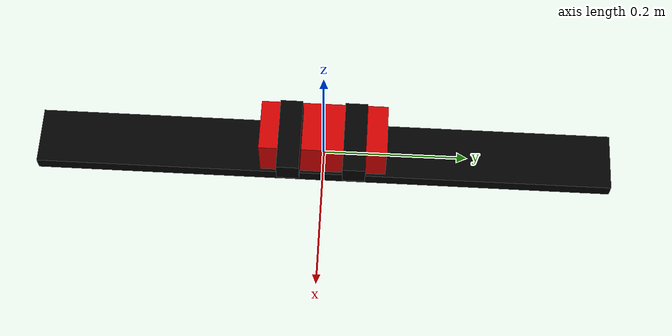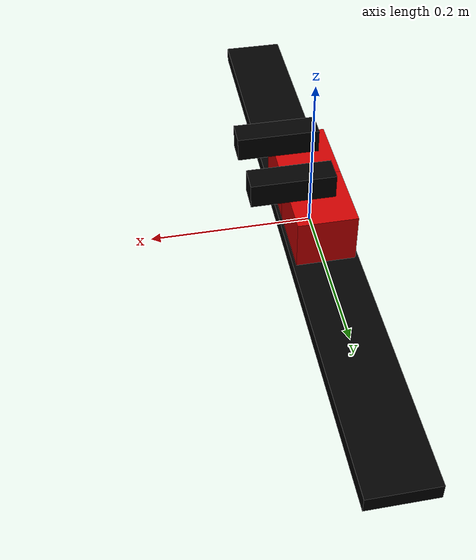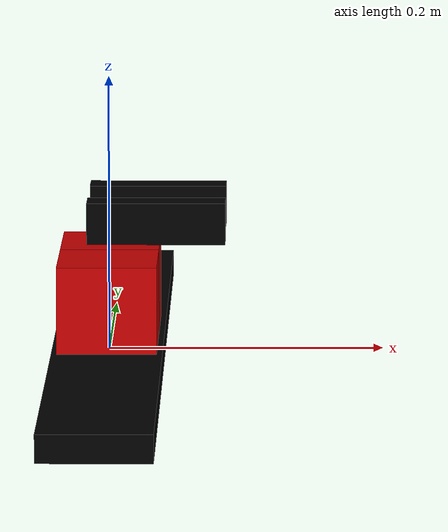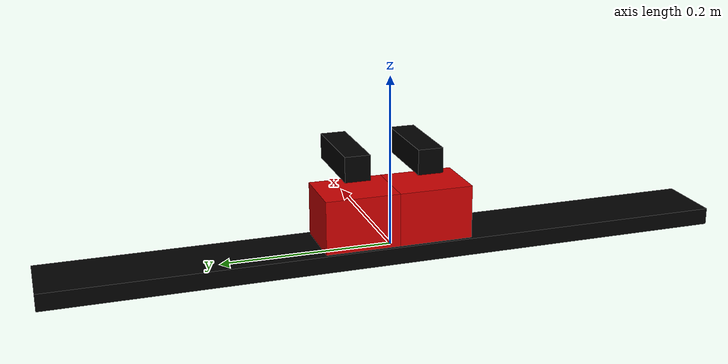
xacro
<?xml version="1.0"?>
<robot name="platform" xmlns:xacro="http://www.ros.org/wiki/xacro">

<!-- Defining the inertial and joint transtion
 -->
   <xacro:macro name="inertial_matrix" params="mass">
      <inertial>
      	<mass value="${mass}" />
        <inertia ixx="1.0" ixy="0.0" ixz="0.0" iyy="0.5" iyz="0.0" izz="1.0" />
      </inertial>
   </xacro:macro>

   <xacro:macro name="transmission_block" params="joint_name">
	  <transmission name="tran1">
	    <type>transmission_interface/SimpleTransmission</type>
	    <joint name="${joint_name}">
	      <hardwareInterface>PositionJointInterface</hardwareInterface>
	    </joint>
	    <actuator name="motor1">
	      <hardwareInterface>PositionJointInterface</hardwareInterface>
	      <mechanicalReduction>1</mechanicalReduction>
	    </actuator>
	  </transmission>
   </xacro:macro>

<!-- Defining the colors used in this robot -->
  <material name="Black">
    <color rgba="0.0 0.0 0.0 1.0"/>
  </material>

  <material name="Red">
    <color rgba="0.8 0.0 0.0 1.0"/>
  </material>

  <material name="White">
    <color rgba="1.0 1.0 1.0 1.0"/>
  </material>

  <material name="Green">
    <color rgba="0 1.0 0 1.0"/>
  </material>

  <material name="Blue">
    <color rgba="0.0 0.0 0.8 1.0"/>
  </material>

  <!-- PROPERTY LIST -->
  <!--All units in m-kg-s-radians unit system -->
  <property name="M_PI" value="3.1415926535897931" />

<!--Define the rail-->
  <link name="rail_link">
    <visual>
      <origin xyz="0 0 0" rpy="0 0 0" />
      <geometry>
          <box size="0.08 0.8 0.02"/>
      </geometry>
      <material name="Black" />
    </visual>
    <collision>
      <origin xyz="0 0 0" rpy="0 0 0 " />
      <geometry>

          <box size="0.08 0.8 0.02"/>

      </geometry>
    </collision>
  </link>

<!--Define the left camera holder-->
  <link name="left_link">
    <visual>
      <origin xyz="0 0 0" rpy="0 0 0" />
      <geometry>
          <box size="0.072 0.087 0.075"/>
      </geometry>
      <material name="Red" />
    </visual>
    <collision>
      <origin xyz="0 0 0" rpy="0 0 0 " />
      <geometry>
          <box size="0.072 0.087 0.075"/>
      </geometry>
    </collision>
  </link>

 <joint name="baseline_left_joint" type="prismatic">
      <parent link="rail_link"/>
      <child link="left_link"/>
      <limit effort="1000.0" lower="0.0" upper="0.25" velocity="2"/>
      <axis xyz="0 1 0"/>
      <origin xyz="0 0.0435 0.03525" rpy="0 0 0"/>
    </joint>

<!--Define the right camera holder-->
  <link name="right_link">
    <visual>
      <origin xyz="0 0 0" rpy="0 0 0" />
      <geometry>
          <box size="0.072 0.087 0.075"/>
      </geometry>
      <material name="Red" />
    </visual>
    <collision>
      <origin xyz="0 0 0" rpy="0 0 0 " />
      <geometry>
          <box size="0.072 0.087 0.075"/>
      </geometry>
    </collision>
  </link>

 <joint name="baseline_right_joint" type="prismatic">
      <parent link="rail_link"/>
      <child link="right_link"/>
      <limit effort="1000.0" lower="-0.25" upper="0.0" velocity="2"/>
      <axis xyz="0 1 0"/>
      <origin xyz="0 -0.0435 0.03525" rpy="0 0 0"/>
      <mimic joint="baseline_left_joint" multiplier="-1.0" offset="0.0" />
    </joint>

<!--Define the left camera pan -->
  <link name="left_pan_link">
    <visual>
      <origin xyz="0.0 0 0.0" rpy="0 0 0" />
      <geometry>
          <box size="0.01 0.010 0.010"/>
      </geometry>
      <material name="Red" />
    </visual>
    <collision>
      <origin xyz="0.0 0 0.0" rpy="0 0 0 " />
      <geometry>
          <box size="0.03 0.030 0.030"/>
      </geometry>
    </collision>
  </link>

 <joint name="left_cam_pan_joint" type="revolute">
      <parent link="left_link"/>
      <child link="left_pan_link"/>
      <axis xyz="0 0 1"/>
      <origin xyz="0 0.0 0.065" rpy="0 0 0"/>
      <limit effort="1.5" velocity="6.178465545" lower="-3.141593" upper="3.141593"/>
    </joint>

<!--Define the left camera tilt -->
  <link name="left_camera_tilt_link">
    <visual>
      <origin xyz="0.035 0 0.0" rpy="0 0 0" />
      <geometry>
          <box size="0.1 0.030 0.030"/>
      </geometry>
      <material name="Black" />
    </visual>
    <collision>
      <origin xyz="0.035 0 0.0" rpy="0 0 0 " />
      <geometry>
          <box size="0.1 0.030 0.030"/>
      </geometry>
    </collision>
  </link>

 <joint name="left_cam_tilt_joint" type="revolute">
      <parent link="left_pan_link"/>
      <child link="left_camera_tilt_link"/>
      <axis xyz="0 1 0"/>
      <origin xyz="0 0.0 0.0" rpy="0 0 0"/>
      <limit effort="1.5" velocity="6.178465545" lower="-0.488692" upper="0.488692"/>
    </joint>

<!--Define the right camera pan -->
  <link name="right_pan_link">
    <visual>
      <origin xyz="0.0 0 0.0" rpy="0 0 0" />
      <geometry>
          <box size="0.01 0.010 0.010"/>
      </geometry>
      <material name="Red" />
    </visual>
    <collision>
      <origin xyz="0.0 0 0.0" rpy="0 0 0 " />
      <geometry>
          <box size="0.01 0.010 0.010"/>
      </geometry>
    </collision>
  </link>

 <joint name="right_cam_pan_joint" type="revolute">
      <parent link="right_link"/>
      <child link="right_pan_link"/>
      <axis xyz="0 0 1"/>
      <origin xyz="0 0.0 0.065" rpy="0 0 0"/>
      <limit effort="1.5" velocity="6.178465545" lower="-3.141593" upper="3.141593"/>
    </joint>

<!--Define the right camera tilt -->
  <link name="right_tilt_link">
    <visual>
      <origin xyz="0.035 0 0.0" rpy="0 0 0" />
      <geometry>
          <box size="0.1 0.030 0.030"/>
      </geometry>
      <material name="Black" />
    </visual>
    <collision>
      <origin xyz="0.035 0 0.0" rpy="0 0 0 " />
      <geometry>
          <box size="0.1 0.030 0.030"/>
      </geometry>
    </collision>
  </link>

 <joint name="right_cam_tilt_joint" type="revolute">
      <parent link="right_pan_link"/>
      <child link="right_tilt_link"/>
      <axis xyz="0 1 0"/>
      <origin xyz="0 0.0 0.0" rpy="0 0 0"/>
      <limit effort="1.5" velocity="6.178465545" lower="-0.488692" upper="0.488692"/>
    </joint>

<!--Define the joint transtions -->

<xacro:transmission_block joint_name="baseline_left_joint"/>
<xacro:transmission_block joint_name="baseline_right_joint"/>

<xacro:transmission_block joint_name="right_cam_pan_joint"/>
<xacro:transmission_block joint_name="right_cam_tilt_joint"/>

<xacro:transmission_block joint_name="left_cam_tilt_joint"/>
<xacro:transmission_block joint_name="left_cam_pan_joint"/>

</robot>
